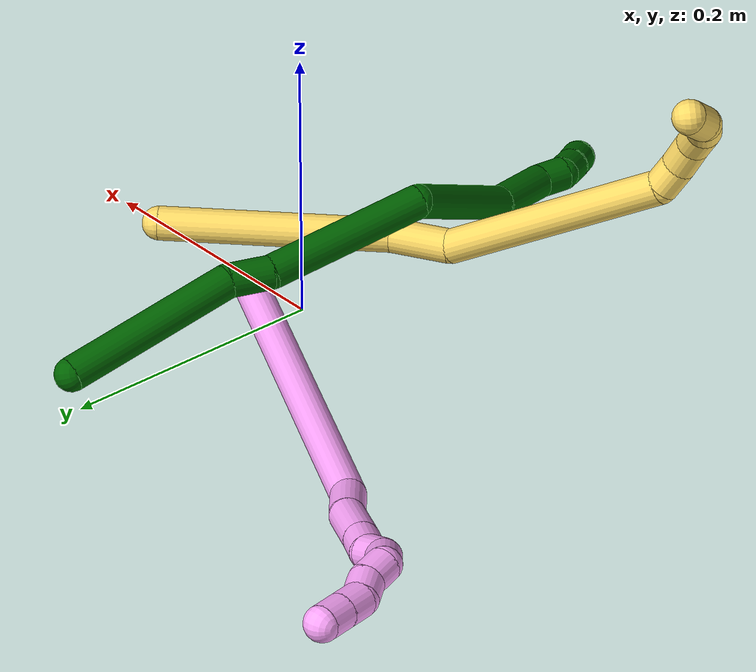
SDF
<sdf version="1.7">
 <world name="default">
  <model name="photoneo_s_sensor">
   <static>1</static>
   <pose>0 0 2 1.57079 1.57079 3.14159</pose>
   <link name="link">
    <inertial><mass>0.1</mass></inertial>
    <sensor name="sensor" type="depth">
     <update_rate>30</update_rate>
     <camera>
      <horizontal_fov>1.22</horizontal_fov>
      <image><width>1920</width><height>1200</height><format>B8G8R8</format></image>
      <clip><near>0.1</near><far>4</far></clip>
      <depth_camera><output>points</output></depth_camera>
     </camera>
     <plugin name="camera_plugin" filename="libgazebo_ros_depth_camera.so">
      <baseline>0.2</baseline>
      <alwaysOn>1</alwaysOn>
      <updateRate>0.0</updateRate>
      <cameraName>camera_ir</cameraName>
      <imageTopicName>/camera/color/image_raw</imageTopicName>
      <cameraInfoTopicName>/camera/color/camera_info</cameraInfoTopicName>
      <depthImageTopicName>/camera/depth/image_raw</depthImageTopicName>
      <depthImageCameraInfoTopicName>/camera/depth/camera_info</depthImageCameraInfoTopicName>
      <pointCloudTopicName>/camera/depth/points</pointCloudTopicName>
      <frameName>fr_optical</frameName>
      <pointCloudCutoff>0.1</pointCloudCutoff>
      <pointCloudCutoffMax>2.0</pointCloudCutoffMax>
      <distortionK1>0</distortionK1>
      <distortionK2>0</distortionK2>
      <distortionK3>0</distortionK3>
      <distortionT1>0</distortionT1>
      <distortionT2>0</distortionT2>
      <CxPrime>0</CxPrime>
      <Cx>0</Cx>
      <Cy>0</Cy>
      <focalLength>0</focalLength>
      <hackBaseline>0</hackBaseline>
     </plugin>
    </sensor>
   </link>
  </model>
  <model name="bin">
   <static>1</static>
   <link name="bottom">
    <collision name="collision-bottom">
     <pose>0 0 -0.01 0 -0 0</pose>
     <geometry><box><size>0.8 0.6 0.02</size></box></geometry>
     <surface>
      <friction><ode><mu>100</mu><mu2>100</mu2></ode></friction>
      <contact><collide_bitmask>65535</collide_bitmask></contact>
     </surface>
    </collision>
   </link>
   <link name="west_wall">
    <collision name="collision-west_wall">
     <pose>-0.41 0 0.1 0 -0 0</pose>
     <geometry><box><size>0.02 0.6 0.2</size></box></geometry>
     <surface>
      <friction><ode><mu>100</mu><mu2>100</mu2></ode></friction>
      <contact><collide_bitmask>65535</collide_bitmask></contact>
     </surface>
    </collision>
   </link>
   <link name="east_wall">
    <collision name="collision-east_wall">
     <pose>0.41 0 0.1 0 -0 0</pose>
     <geometry><box><size>0.02 0.6 0.2</size></box></geometry>
     <surface>
      <friction><ode><mu>100</mu><mu2>100</mu2></ode></friction>
      <contact><collide_bitmask>65535</collide_bitmask></contact>
     </surface>
    </collision>
   </link>
   <link name="south_wall">
    <collision name="collision-south_wall">
     <pose>0 -0.31 0.1 0 -0 0</pose>
     <geometry><box><size>0.8 0.02 0.2</size></box></geometry>
     <surface>
      <friction><ode><mu>100</mu><mu2>100</mu2></ode></friction>
      <contact><collide_bitmask>65535</collide_bitmask></contact>
     </surface>
    </collision>
   </link>
   <link name="north_wall">
    <collision name="collision-north_wall">
     <pose>0 0.31 0.1 0 -0 0</pose>
     <geometry><box><size>0.8 0.02 0.2</size></box></geometry>
     <surface>
      <friction><ode><mu>100</mu><mu2>100</mu2></ode></friction>
      <contact><collide_bitmask>65535</collide_bitmask></contact>
     </surface>
    </collision>
   </link>
  </model>
  <model name="4">
   <static>0</static>
   <link name="4">
    <collision name="collision-cylinder-e_1_1_4">
     <pose>-0.062765 0.024724 0.118933 -0.204961 -0.476908 0.049986</pose>
     <geometry><cylinder><radius>0.0125</radius><length>0.273465</length></cylinder></geometry>
     <surface>
      <friction><ode><mu>1.16</mu><mu2>1.16</mu2><slip1>0</slip1><slip2>0</slip2></ode></friction>
      <contact><ode><kp>1e+06</kp><kd>1</kd><max_vel>0</max_vel><min_depth>0.001</min_depth></ode></contact>
     </surface>
    </collision>
    <visual name="visual-cylinder-e_1_1_4">
     <pose>-0.062765 0.024724 0.118933 -0.204961 -0.476908 0.049986</pose>
     <geometry><cylinder><radius>0.0125</radius><length>0.273465</length></cylinder></geometry>
     <material><ambient>1 0.65098 0.996078 1</ambient></material>
    </visual>
    <collision name="collision-cylinder-e_2_4_5">
     <pose>-0.135079 0.058326 0.250981 -0.595091 -0.542561 0.170169</pose>
     <geometry><cylinder><radius>0.0125</radius><length>0.036987</length></cylinder></geometry>
     <surface>
      <friction><ode><mu>1.16</mu><mu2>1.16</mu2><slip1>0</slip1><slip2>0</slip2></ode></friction>
      <contact><ode><kp>1e+06</kp><kd>1</kd><max_vel>0</max_vel><min_depth>0.001</min_depth></ode></contact>
     </surface>
    </collision>
    <visual name="visual-cylinder-e_2_4_5">
     <pose>-0.135079 0.058326 0.250981 -0.595091 -0.542561 0.170169</pose>
     <geometry><cylinder><radius>0.0125</radius><length>0.036987</length></cylinder></geometry>
     <material><ambient>1 0.65098 0.996078 1</ambient></material>
    </visual>
    <collision name="collision-cylinder-e_3_5_6">
     <pose>-0.152834 0.075693 0.283196 -0.4182 -0.374143 0.08029</pose>
     <geometry><cylinder><radius>0.0125</radius><length>0.044908</length></cylinder></geometry>
     <surface>
      <friction><ode><mu>1.16</mu><mu2>1.16</mu2><slip1>0</slip1><slip2>0</slip2></ode></friction>
      <contact><ode><kp>1e+06</kp><kd>1</kd><max_vel>0</max_vel><min_depth>0.001</min_depth></ode></contact>
     </surface>
    </collision>
    <visual name="visual-cylinder-e_3_5_6">
     <pose>-0.152834 0.075693 0.283196 -0.4182 -0.374143 0.08029</pose>
     <geometry><cylinder><radius>0.0125</radius><length>0.044908</length></cylinder></geometry>
     <material><ambient>1 0.65098 0.996078 1</ambient></material>
    </visual>
    <collision name="collision-cylinder-e_4_6_7">
     <pose>-0.165764 0.08903 0.312281 -0.452081 -0.402326 0.093723</pose>
     <geometry><cylinder><radius>0.0125</radius><length>0.024129</length></cylinder></geometry>
     <surface>
      <friction><ode><mu>1.16</mu><mu2>1.16</mu2><slip1>0</slip1><slip2>0</slip2></ode></friction>
      <contact><ode><kp>1e+06</kp><kd>1</kd><max_vel>0</max_vel><min_depth>0.001</min_depth></ode></contact>
     </surface>
    </collision>
    <visual name="visual-cylinder-e_4_6_7">
     <pose>-0.165764 0.08903 0.312281 -0.452081 -0.402326 0.093723</pose>
     <geometry><cylinder><radius>0.0125</radius><length>0.024129</length></cylinder></geometry>
     <material><ambient>1 0.65098 0.996078 1</ambient></material>
    </visual>
    <collision name="collision-cylinder-e_5_7_8">
     <pose>-0.170702 0.097393 0.331821 -0.352388 -0.020998 0.003739</pose>
     <geometry><cylinder><radius>0.0125</radius><length>0.020363</length></cylinder></geometry>
     <surface>
      <friction><ode><mu>1.16</mu><mu2>1.16</mu2><slip1>0</slip1><slip2>0</slip2></ode></friction>
      <contact><ode><kp>1e+06</kp><kd>1</kd><max_vel>0</max_vel><min_depth>0.001</min_depth></ode></contact>
     </surface>
    </collision>
    <visual name="visual-cylinder-e_5_7_8">
     <pose>-0.170702 0.097393 0.331821 -0.352388 -0.020998 0.003739</pose>
     <geometry><cylinder><radius>0.0125</radius><length>0.020363</length></cylinder></geometry>
     <material><ambient>1 0.65098 0.996078 1</ambient></material>
    </visual>
    <collision name="collision-cylinder-e_6_8_9">
     <pose>-0.175196 0.106565 0.348447 -0.674822 -0.441435 0.157108</pose>
     <geometry><cylinder><radius>0.0125</radius><length>0.020036</length></cylinder></geometry>
     <surface>
      <friction><ode><mu>1.16</mu><mu2>1.16</mu2><slip1>0</slip1><slip2>0</slip2></ode></friction>
      <contact><ode><kp>1e+06</kp><kd>1</kd><max_vel>0</max_vel><min_depth>0.001</min_depth></ode></contact>
     </surface>
    </collision>
    <visual name="visual-cylinder-e_6_8_9">
     <pose>-0.175196 0.106565 0.348447 -0.674822 -0.441435 0.157108</pose>
     <geometry><cylinder><radius>0.0125</radius><length>0.020036</length></cylinder></geometry>
     <material><ambient>1 0.65098 0.996078 1</ambient></material>
    </visual>
    <collision name="collision-cylinder-e_7_9_10">
     <pose>-0.188326 0.116451 0.357699 -1.09469 -1.0777 0.698846</pose>
     <geometry><cylinder><radius>0.0125</radius><length>0.020094</length></cylinder></geometry>
     <surface>
      <friction><ode><mu>1.16</mu><mu2>1.16</mu2><slip1>0</slip1><slip2>0</slip2></ode></friction>
      <contact><ode><kp>1e+06</kp><kd>1</kd><max_vel>0</max_vel><min_depth>0.001</min_depth></ode></contact>
     </surface>
    </collision>
    <visual name="visual-cylinder-e_7_9_10">
     <pose>-0.188326 0.116451 0.357699 -1.09469 -1.0777 0.698846</pose>
     <geometry><cylinder><radius>0.0125</radius><length>0.020094</length></cylinder></geometry>
     <material><ambient>1 0.65098 0.996078 1</ambient></material>
    </visual>
    <collision name="collision-cylinder-e_8_10_11">
     <pose>-0.204707 0.124066 0.365527 -0.540375 -0.852185 0.250112</pose>
     <geometry><cylinder><radius>0.0125</radius><length>0.02001</length></cylinder></geometry>
     <surface>
      <friction><ode><mu>1.16</mu><mu2>1.16</mu2><slip1>0</slip1><slip2>0</slip2></ode></friction>
      <contact><ode><kp>1e+06</kp><kd>1</kd><max_vel>0</max_vel><min_depth>0.001</min_depth></ode></contact>
     </surface>
    </collision>
    <visual name="visual-cylinder-e_8_10_11">
     <pose>-0.204707 0.124066 0.365527 -0.540375 -0.852185 0.250112</pose>
     <geometry><cylinder><radius>0.0125</radius><length>0.02001</length></cylinder></geometry>
     <material><ambient>1 0.65098 0.996078 1</ambient></material>
    </visual>
    <collision name="collision-cylinder-e_9_11_12">
     <pose>-0.220461 0.132909 0.372819 -1.27809 -0.964922 0.742277</pose>
     <geometry><cylinder><radius>0.0125</radius><length>0.020006</length></cylinder></geometry>
     <surface>
      <friction><ode><mu>1.16</mu><mu2>1.16</mu2><slip1>0</slip1><slip2>0</slip2></ode></friction>
      <contact><ode><kp>1e+06</kp><kd>1</kd><max_vel>0</max_vel><min_depth>0.001</min_depth></ode></contact>
     </surface>
    </collision>
    <visual name="visual-cylinder-e_9_11_12">
     <pose>-0.220461 0.132909 0.372819 -1.27809 -0.964922 0.742277</pose>
     <geometry><cylinder><radius>0.0125</radius><length>0.020006</length></cylinder></geometry>
     <material><ambient>1 0.65098 0.996078 1</ambient></material>
    </visual>
    <collision name="collision-cylinder-e_10_12_2">
     <pose>-0.23684 0.143884 0.376195 -1.26681 -0.953833 0.7253</pose>
     <geometry><cylinder><radius>0.0125</radius><length>0.020002</length></cylinder></geometry>
     <surface>
      <friction><ode><mu>1.16</mu><mu2>1.16</mu2><slip1>0</slip1><slip2>0</slip2></ode></friction>
      <contact><ode><kp>1e+06</kp><kd>1</kd><max_vel>0</max_vel><min_depth>0.001</min_depth></ode></contact>
     </surface>
    </collision>
    <visual name="visual-cylinder-e_10_12_2">
     <pose>-0.23684 0.143884 0.376195 -1.26681 -0.953833 0.7253</pose>
     <geometry><cylinder><radius>0.0125</radius><length>0.020002</length></cylinder></geometry>
     <material><ambient>1 0.65098 0.996078 1</ambient></material>
    </visual>
    <collision name="collision-sphere-2">
     <pose>-0.244997 0.149405 0.377927 0 -0 0</pose>
     <geometry><sphere><radius>0.0125</radius></sphere></geometry>
     <surface>
      <friction><ode><mu>1.16</mu><mu2>1.16</mu2><slip1>0</slip1><slip2>0</slip2></ode></friction>
      <contact><ode><kp>1e+06</kp><kd>1</kd><max_vel>0</max_vel><min_depth>0.001</min_depth></ode></contact>
     </surface>
    </collision>
    <visual name="visual-sphere-2">
     <pose>-0.244997 0.149405 0.377927 0 -0 0</pose>
     <geometry><sphere><radius>0.0125</radius></sphere></geometry>
     <material><ambient>1 0.65098 0.996078 1</ambient></material>
    </visual>
    <collision name="collision-sphere-12">
     <pose>-0.228683 0.138363 0.374463 0 -0 0</pose>
     <geometry><sphere><radius>0.0125</radius></sphere></geometry>
     <surface>
      <friction><ode><mu>1.16</mu><mu2>1.16</mu2><slip1>0</slip1><slip2>0</slip2></ode></friction>
      <contact><ode><kp>1e+06</kp><kd>1</kd><max_vel>0</max_vel><min_depth>0.001</min_depth></ode></contact>
     </surface>
    </collision>
    <visual name="visual-sphere-12">
     <pose>-0.228683 0.138363 0.374463 0 -0 0</pose>
     <geometry><sphere><radius>0.0125</radius></sphere></geometry>
     <material><ambient>1 0.65098 0.996078 1</ambient></material>
    </visual>
    <collision name="collision-sphere-11">
     <pose>-0.212238 0.127455 0.371176 0 -0 0</pose>
     <geometry><sphere><radius>0.0125</radius></sphere></geometry>
     <surface>
      <friction><ode><mu>1.16</mu><mu2>1.16</mu2><slip1>0</slip1><slip2>0</slip2></ode></friction>
      <contact><ode><kp>1e+06</kp><kd>1</kd><max_vel>0</max_vel><min_depth>0.001</min_depth></ode></contact>
     </surface>
    </collision>
    <visual name="visual-sphere-11">
     <pose>-0.212238 0.127455 0.371176 0 -0 0</pose>
     <geometry><sphere><radius>0.0125</radius></sphere></geometry>
     <material><ambient>1 0.65098 0.996078 1</ambient></material>
    </visual>
    <collision name="collision-sphere-10">
     <pose>-0.197176 0.120678 0.359879 0 -0 0</pose>
     <geometry><sphere><radius>0.0125</radius></sphere></geometry>
     <surface>
      <friction><ode><mu>1.16</mu><mu2>1.16</mu2><slip1>0</slip1><slip2>0</slip2></ode></friction>
      <contact><ode><kp>1e+06</kp><kd>1</kd><max_vel>0</max_vel><min_depth>0.001</min_depth></ode></contact>
     </surface>
    </collision>
    <visual name="visual-sphere-10">
     <pose>-0.197176 0.120678 0.359879 0 -0 0</pose>
     <geometry><sphere><radius>0.0125</radius></sphere></geometry>
     <material><ambient>1 0.65098 0.996078 1</ambient></material>
    </visual>
    <collision name="collision-sphere-9">
     <pose>-0.179476 0.112224 0.35552 0 -0 0</pose>
     <geometry><sphere><radius>0.0125</radius></sphere></geometry>
     <surface>
      <friction><ode><mu>1.16</mu><mu2>1.16</mu2><slip1>0</slip1><slip2>0</slip2></ode></friction>
      <contact><ode><kp>1e+06</kp><kd>1</kd><max_vel>0</max_vel><min_depth>0.001</min_depth></ode></contact>
     </surface>
    </collision>
    <visual name="visual-sphere-9">
     <pose>-0.179476 0.112224 0.35552 0 -0 0</pose>
     <geometry><sphere><radius>0.0125</radius></sphere></geometry>
     <material><ambient>1 0.65098 0.996078 1</ambient></material>
    </visual>
    <collision name="collision-sphere-4">
     <pose>-0.12553 0.049448 0.237866 0 -0 0</pose>
     <geometry><sphere><radius>0.0125</radius></sphere></geometry>
     <surface>
      <friction><ode><mu>1.16</mu><mu2>1.16</mu2><slip1>0</slip1><slip2>0</slip2></ode></friction>
      <contact><ode><kp>1e+06</kp><kd>1</kd><max_vel>0</max_vel><min_depth>0.001</min_depth></ode></contact>
     </surface>
    </collision>
    <visual name="visual-sphere-4">
     <pose>-0.12553 0.049448 0.237866 0 -0 0</pose>
     <geometry><sphere><radius>0.0125</radius></sphere></geometry>
     <material><ambient>1 0.65098 0.996078 1</ambient></material>
    </visual>
    <collision name="collision-sphere-1">
     <geometry><sphere><radius>0.0125</radius></sphere></geometry>
     <surface>
      <friction><ode><mu>1.16</mu><mu2>1.16</mu2><slip1>0</slip1><slip2>0</slip2></ode></friction>
      <contact><ode><kp>1e+06</kp><kd>1</kd><max_vel>0</max_vel><min_depth>0.001</min_depth></ode></contact>
     </surface>
    </collision>
    <visual name="visual-sphere-1">
     <geometry><sphere><radius>0.0125</radius></sphere></geometry>
     <material><ambient>1 0.65098 0.996078 1</ambient></material>
    </visual>
    <collision name="collision-sphere-8">
     <pose>-0.170916 0.100906 0.341375 0 -0 0</pose>
     <geometry><sphere><radius>0.0125</radius></sphere></geometry>
     <surface>
      <friction><ode><mu>1.16</mu><mu2>1.16</mu2><slip1>0</slip1><slip2>0</slip2></ode></friction>
      <contact><ode><kp>1e+06</kp><kd>1</kd><max_vel>0</max_vel><min_depth>0.001</min_depth></ode></contact>
     </surface>
    </collision>
    <visual name="visual-sphere-8">
     <pose>-0.170916 0.100906 0.341375 0 -0 0</pose>
     <geometry><sphere><radius>0.0125</radius></sphere></geometry>
     <material><ambient>1 0.65098 0.996078 1</ambient></material>
    </visual>
    <collision name="collision-sphere-5">
     <pose>-0.144627 0.067204 0.264097 0 -0 0</pose>
     <geometry><sphere><radius>0.0125</radius></sphere></geometry>
     <surface>
      <friction><ode><mu>1.16</mu><mu2>1.16</mu2><slip1>0</slip1><slip2>0</slip2></ode></friction>
      <contact><ode><kp>1e+06</kp><kd>1</kd><max_vel>0</max_vel><min_depth>0.001</min_depth></ode></contact>
     </surface>
    </collision>
    <visual name="visual-sphere-5">
     <pose>-0.144627 0.067204 0.264097 0 -0 0</pose>
     <geometry><sphere><radius>0.0125</radius></sphere></geometry>
     <material><ambient>1 0.65098 0.996078 1</ambient></material>
    </visual>
    <collision name="collision-sphere-6">
     <pose>-0.16104 0.084181 0.302295 0 -0 0</pose>
     <geometry><sphere><radius>0.0125</radius></sphere></geometry>
     <surface>
      <friction><ode><mu>1.16</mu><mu2>1.16</mu2><slip1>0</slip1><slip2>0</slip2></ode></friction>
      <contact><ode><kp>1e+06</kp><kd>1</kd><max_vel>0</max_vel><min_depth>0.001</min_depth></ode></contact>
     </surface>
    </collision>
    <visual name="visual-sphere-6">
     <pose>-0.16104 0.084181 0.302295 0 -0 0</pose>
     <geometry><sphere><radius>0.0125</radius></sphere></geometry>
     <material><ambient>1 0.65098 0.996078 1</ambient></material>
    </visual>
    <collision name="collision-sphere-7">
     <pose>-0.170488 0.093879 0.322267 0 -0 0</pose>
     <geometry><sphere><radius>0.0125</radius></sphere></geometry>
     <surface>
      <friction><ode><mu>1.16</mu><mu2>1.16</mu2><slip1>0</slip1><slip2>0</slip2></ode></friction>
      <contact><ode><kp>1e+06</kp><kd>1</kd><max_vel>0</max_vel><min_depth>0.001</min_depth></ode></contact>
     </surface>
    </collision>
    <visual name="visual-sphere-7">
     <pose>-0.170488 0.093879 0.322267 0 -0 0</pose>
     <geometry><sphere><radius>0.0125</radius></sphere></geometry>
     <material><ambient>1 0.65098 0.996078 1</ambient></material>
    </visual>
    <inertial>
     <pose>-0.114076 0.057887 0.210567 0 -0 0</pose>
     <mass>0.5</mass>
     <inertia>
      <ixx>0.001603</ixx>
      <ixy>0</ixy>
      <ixz>0</ixz>
      <iyy>0.001799</iyy>
      <iyz>0</iyz>
      <izz>0.000508</izz>
     </inertia>
    </inertial>
   </link>
   <pose>0.030246 0.020431 0.010705 1.4759 -0.519346 -1.47204</pose>
  </model>
  <model name="5">
   <static>0</static>
   <link name="5">
    <collision name="collision-cylinder-e_1_1_4">
     <pose>0.011979 -0.010937 0.082631 0.131589 0.142738 0.009421</pose>
     <geometry><cylinder><radius>0.0125</radius><length>0.168416</length></cylinder></geometry>
     <surface>
      <friction><ode><mu>1.16</mu><mu2>1.16</mu2><slip1>0</slip1><slip2>0</slip2></ode></friction>
      <contact><ode><kp>1e+06</kp><kd>1</kd><max_vel>0</max_vel><min_depth>0.001</min_depth></ode></contact>
     </surface>
    </collision>
    <visual name="visual-cylinder-e_1_1_4">
     <pose>0.011979 -0.010937 0.082631 0.131589 0.142738 0.009421</pose>
     <geometry><cylinder><radius>0.0125</radius><length>0.168416</length></cylinder></geometry>
     <material><ambient>1 0.858824 0.4 1</ambient></material>
    </visual>
    <collision name="collision-cylinder-e_2_4_5">
     <pose>0.029288 -0.028915 0.185732 0.331342 0.241408 0.040556</pose>
     <geometry><cylinder><radius>0.0125</radius><length>0.044588</length></cylinder></geometry>
     <surface>
      <friction><ode><mu>1.16</mu><mu2>1.16</mu2><slip1>0</slip1><slip2>0</slip2></ode></friction>
      <contact><ode><kp>1e+06</kp><kd>1</kd><max_vel>0</max_vel><min_depth>0.001</min_depth></ode></contact>
     </surface>
    </collision>
    <visual name="visual-cylinder-e_2_4_5">
     <pose>0.029288 -0.028915 0.185732 0.331342 0.241408 0.040556</pose>
     <geometry><cylinder><radius>0.0125</radius><length>0.044588</length></cylinder></geometry>
     <material><ambient>1 0.858824 0.4 1</ambient></material>
    </visual>
    <collision name="collision-cylinder-e_3_5_6">
     <pose>0.015804 -0.081625 0.280786 0.54942 -0.211889 -0.059924</pose>
     <geometry><cylinder><radius>0.0125</radius><length>0.17891</length></cylinder></geometry>
     <surface>
      <friction><ode><mu>1.16</mu><mu2>1.16</mu2><slip1>0</slip1><slip2>0</slip2></ode></friction>
      <contact><ode><kp>1e+06</kp><kd>1</kd><max_vel>0</max_vel><min_depth>0.001</min_depth></ode></contact>
     </surface>
    </collision>
    <visual name="visual-cylinder-e_3_5_6">
     <pose>0.015804 -0.081625 0.280786 0.54942 -0.211889 -0.059924</pose>
     <geometry><cylinder><radius>0.0125</radius><length>0.17891</length></cylinder></geometry>
     <material><ambient>1 0.858824 0.4 1</ambient></material>
    </visual>
    <collision name="collision-cylinder-e_4_6_7">
     <pose>-0.010148 -0.13107 0.361998 0.517888 -0.752279 -0.208476</pose>
     <geometry><cylinder><radius>0.0125</radius><length>0.020898</length></cylinder></geometry>
     <surface>
      <friction><ode><mu>1.16</mu><mu2>1.16</mu2><slip1>0</slip1><slip2>0</slip2></ode></friction>
      <contact><ode><kp>1e+06</kp><kd>1</kd><max_vel>0</max_vel><min_depth>0.001</min_depth></ode></contact>
     </surface>
    </collision>
    <visual name="visual-cylinder-e_4_6_7">
     <pose>-0.010148 -0.13107 0.361998 0.517888 -0.752279 -0.208476</pose>
     <geometry><cylinder><radius>0.0125</radius><length>0.020898</length></cylinder></geometry>
     <material><ambient>1 0.858824 0.4 1</ambient></material>
    </visual>
    <collision name="collision-cylinder-e_5_7_8">
     <pose>-0.024839 -0.142024 0.374169 0.913236 -0.694361 -0.351825</pose>
     <geometry><cylinder><radius>0.0125</radius><length>0.0236</length></cylinder></geometry>
     <surface>
      <friction><ode><mu>1.16</mu><mu2>1.16</mu2><slip1>0</slip1><slip2>0</slip2></ode></friction>
      <contact><ode><kp>1e+06</kp><kd>1</kd><max_vel>0</max_vel><min_depth>0.001</min_depth></ode></contact>
     </surface>
    </collision>
    <visual name="visual-cylinder-e_5_7_8">
     <pose>-0.024839 -0.142024 0.374169 0.913236 -0.694361 -0.351825</pose>
     <geometry><cylinder><radius>0.0125</radius><length>0.0236</length></cylinder></geometry>
     <material><ambient>1 0.858824 0.4 1</ambient></material>
    </visual>
    <collision name="collision-cylinder-e_6_8_9">
     <pose>-0.037672 -0.158881 0.383377 1.20873 -0.471895 -0.329056</pose>
     <geometry><cylinder><radius>0.0125</radius><length>0.023241</length></cylinder></geometry>
     <surface>
      <friction><ode><mu>1.16</mu><mu2>1.16</mu2><slip1>0</slip1><slip2>0</slip2></ode></friction>
      <contact><ode><kp>1e+06</kp><kd>1</kd><max_vel>0</max_vel><min_depth>0.001</min_depth></ode></contact>
     </surface>
    </collision>
    <visual name="visual-cylinder-e_6_8_9">
     <pose>-0.037672 -0.158881 0.383377 1.20873 -0.471895 -0.329056</pose>
     <geometry><cylinder><radius>0.0125</radius><length>0.023241</length></cylinder></geometry>
     <material><ambient>1 0.858824 0.4 1</ambient></material>
    </visual>
    <collision name="collision-cylinder-e_7_9_10">
     <pose>-0.046423 -0.178021 0.386854 1.59084 -0.35136 -0.358325</pose>
     <geometry><cylinder><radius>0.0125</radius><length>0.020157</length></cylinder></geometry>
     <surface>
      <friction><ode><mu>1.16</mu><mu2>1.16</mu2><slip1>0</slip1><slip2>0</slip2></ode></friction>
      <contact><ode><kp>1e+06</kp><kd>1</kd><max_vel>0</max_vel><min_depth>0.001</min_depth></ode></contact>
     </surface>
    </collision>
    <visual name="visual-cylinder-e_7_9_10">
     <pose>-0.046423 -0.178021 0.386854 1.59084 -0.35136 -0.358325</pose>
     <geometry><cylinder><radius>0.0125</radius><length>0.020157</length></cylinder></geometry>
     <material><ambient>1 0.858824 0.4 1</ambient></material>
    </visual>
    <collision name="collision-cylinder-e_8_10_2">
     <pose>-0.053572 -0.195491 0.381742 2.12183 -0.373091 -0.651019</pose>
     <geometry><cylinder><radius>0.0125</radius><length>0.02019</length></cylinder></geometry>
     <surface>
      <friction><ode><mu>1.16</mu><mu2>1.16</mu2><slip1>0</slip1><slip2>0</slip2></ode></friction>
      <contact><ode><kp>1e+06</kp><kd>1</kd><max_vel>0</max_vel><min_depth>0.001</min_depth></ode></contact>
     </surface>
    </collision>
    <visual name="visual-cylinder-e_8_10_2">
     <pose>-0.053572 -0.195491 0.381742 2.12183 -0.373091 -0.651019</pose>
     <geometry><cylinder><radius>0.0125</radius><length>0.02019</length></cylinder></geometry>
     <material><ambient>1 0.858824 0.4 1</ambient></material>
    </visual>
    <collision name="collision-sphere-2">
     <pose>-0.057251 -0.2035 0.376821 0 -0 0</pose>
     <geometry><sphere><radius>0.0125</radius></sphere></geometry>
     <surface>
      <friction><ode><mu>1.16</mu><mu2>1.16</mu2><slip1>0</slip1><slip2>0</slip2></ode></friction>
      <contact><ode><kp>1e+06</kp><kd>1</kd><max_vel>0</max_vel><min_depth>0.001</min_depth></ode></contact>
     </surface>
    </collision>
    <visual name="visual-sphere-2">
     <pose>-0.057251 -0.2035 0.376821 0 -0 0</pose>
     <geometry><sphere><radius>0.0125</radius></sphere></geometry>
     <material><ambient>1 0.858824 0.4 1</ambient></material>
    </visual>
    <collision name="collision-sphere-10">
     <pose>-0.049892 -0.187482 0.386664 0 -0 0</pose>
     <geometry><sphere><radius>0.0125</radius></sphere></geometry>
     <surface>
      <friction><ode><mu>1.16</mu><mu2>1.16</mu2><slip1>0</slip1><slip2>0</slip2></ode></friction>
      <contact><ode><kp>1e+06</kp><kd>1</kd><max_vel>0</max_vel><min_depth>0.001</min_depth></ode></contact>
     </surface>
    </collision>
    <visual name="visual-sphere-10">
     <pose>-0.049892 -0.187482 0.386664 0 -0 0</pose>
     <geometry><sphere><radius>0.0125</radius></sphere></geometry>
     <material><ambient>1 0.858824 0.4 1</ambient></material>
    </visual>
    <collision name="collision-sphere-9">
     <pose>-0.042955 -0.16856 0.387043 0 -0 0</pose>
     <geometry><sphere><radius>0.0125</radius></sphere></geometry>
     <surface>
      <friction><ode><mu>1.16</mu><mu2>1.16</mu2><slip1>0</slip1><slip2>0</slip2></ode></friction>
      <contact><ode><kp>1e+06</kp><kd>1</kd><max_vel>0</max_vel><min_depth>0.001</min_depth></ode></contact>
     </surface>
    </collision>
    <visual name="visual-sphere-9">
     <pose>-0.042955 -0.16856 0.387043 0 -0 0</pose>
     <geometry><sphere><radius>0.0125</radius></sphere></geometry>
     <material><ambient>1 0.858824 0.4 1</ambient></material>
    </visual>
    <collision name="collision-sphere-4">
     <pose>0.023958 -0.021873 0.165262 0 -0 0</pose>
     <geometry><sphere><radius>0.0125</radius></sphere></geometry>
     <surface>
      <friction><ode><mu>1.16</mu><mu2>1.16</mu2><slip1>0</slip1><slip2>0</slip2></ode></friction>
      <contact><ode><kp>1e+06</kp><kd>1</kd><max_vel>0</max_vel><min_depth>0.001</min_depth></ode></contact>
     </surface>
    </collision>
    <visual name="visual-sphere-4">
     <pose>0.023958 -0.021873 0.165262 0 -0 0</pose>
     <geometry><sphere><radius>0.0125</radius></sphere></geometry>
     <material><ambient>1 0.858824 0.4 1</ambient></material>
    </visual>
    <collision name="collision-sphere-1">
     <geometry><sphere><radius>0.0125</radius></sphere></geometry>
     <surface>
      <friction><ode><mu>1.16</mu><mu2>1.16</mu2><slip1>0</slip1><slip2>0</slip2></ode></friction>
      <contact><ode><kp>1e+06</kp><kd>1</kd><max_vel>0</max_vel><min_depth>0.001</min_depth></ode></contact>
     </surface>
    </collision>
    <visual name="visual-sphere-1">
     <geometry><sphere><radius>0.0125</radius></sphere></geometry>
     <material><ambient>1 0.858824 0.4 1</ambient></material>
    </visual>
    <collision name="collision-sphere-8">
     <pose>-0.03239 -0.149201 0.379711 0 -0 0</pose>
     <geometry><sphere><radius>0.0125</radius></sphere></geometry>
     <surface>
      <friction><ode><mu>1.16</mu><mu2>1.16</mu2><slip1>0</slip1><slip2>0</slip2></ode></friction>
      <contact><ode><kp>1e+06</kp><kd>1</kd><max_vel>0</max_vel><min_depth>0.001</min_depth></ode></contact>
     </surface>
    </collision>
    <visual name="visual-sphere-8">
     <pose>-0.03239 -0.149201 0.379711 0 -0 0</pose>
     <geometry><sphere><radius>0.0125</radius></sphere></geometry>
     <material><ambient>1 0.858824 0.4 1</ambient></material>
    </visual>
    <collision name="collision-sphere-5">
     <pose>0.034617 -0.035957 0.206202 0 -0 0</pose>
     <geometry><sphere><radius>0.0125</radius></sphere></geometry>
     <surface>
      <friction><ode><mu>1.16</mu><mu2>1.16</mu2><slip1>0</slip1><slip2>0</slip2></ode></friction>
      <contact><ode><kp>1e+06</kp><kd>1</kd><max_vel>0</max_vel><min_depth>0.001</min_depth></ode></contact>
     </surface>
    </collision>
    <visual name="visual-sphere-5">
     <pose>0.034617 -0.035957 0.206202 0 -0 0</pose>
     <geometry><sphere><radius>0.0125</radius></sphere></geometry>
     <material><ambient>1 0.858824 0.4 1</ambient></material>
    </visual>
    <collision name="collision-sphere-6">
     <pose>-0.003009 -0.127293 0.355369 0 -0 0</pose>
     <geometry><sphere><radius>0.0125</radius></sphere></geometry>
     <surface>
      <friction><ode><mu>1.16</mu><mu2>1.16</mu2><slip1>0</slip1><slip2>0</slip2></ode></friction>
      <contact><ode><kp>1e+06</kp><kd>1</kd><max_vel>0</max_vel><min_depth>0.001</min_depth></ode></contact>
     </surface>
    </collision>
    <visual name="visual-sphere-6">
     <pose>-0.003009 -0.127293 0.355369 0 -0 0</pose>
     <geometry><sphere><radius>0.0125</radius></sphere></geometry>
     <material><ambient>1 0.858824 0.4 1</ambient></material>
    </visual>
    <collision name="collision-sphere-7">
     <pose>-0.017288 -0.134847 0.368627 0 -0 0</pose>
     <geometry><sphere><radius>0.0125</radius></sphere></geometry>
     <surface>
      <friction><ode><mu>1.16</mu><mu2>1.16</mu2><slip1>0</slip1><slip2>0</slip2></ode></friction>
      <contact><ode><kp>1e+06</kp><kd>1</kd><max_vel>0</max_vel><min_depth>0.001</min_depth></ode></contact>
     </surface>
    </collision>
    <visual name="visual-sphere-7">
     <pose>-0.017288 -0.134847 0.368627 0 -0 0</pose>
     <geometry><sphere><radius>0.0125</radius></sphere></geometry>
     <material><ambient>1 0.858824 0.4 1</ambient></material>
    </visual>
    <inertial>
     <pose>0.004919 -0.070107 0.226488 0 -0 0</pose>
     <mass>0.5</mass>
     <inertia>
      <ixx>0.000857</ixx>
      <ixy>0</ixy>
      <ixz>0</ixz>
      <iyy>0.000786</iyy>
      <iyz>0</iyz>
      <izz>0.000384</izz>
     </inertia>
    </inertial>
   </link>
   <pose>0.114354 0.037325 0.035081 -1.32533 1.14807 2.69213</pose>
  </model>
  <model name="6">
   <static>0</static>
   <link name="6">
    <collision name="collision-cylinder-e_1_1_4">
     <pose>0.043344 -0.039054 0.030376 0.909736 0.719429 0.363792</pose>
     <geometry><cylinder><radius>0.0125</radius><length>0.131554</length></cylinder></geometry>
     <surface>
      <friction><ode><mu>1.16</mu><mu2>1.16</mu2><slip1>0</slip1><slip2>0</slip2></ode></friction>
      <contact><ode><kp>1e+06</kp><kd>1</kd><max_vel>0</max_vel><min_depth>0.001</min_depth></ode></contact>
     </surface>
    </collision>
    <visual name="visual-cylinder-e_1_1_4">
     <pose>0.043344 -0.039054 0.030376 0.909736 0.719429 0.363792</pose>
     <geometry><cylinder><radius>0.0125</radius><length>0.131554</length></cylinder></geometry>
     <material><ambient>0 0.392157 0.003922 1</ambient></material>
    </visual>
    <collision name="collision-cylinder-e_2_4_5">
     <pose>0.092778 -0.090122 0.069436 0.944969 0.389792 0.201102</pose>
     <geometry><cylinder><radius>0.0125</radius><length>0.032053</length></cylinder></geometry>
     <surface>
      <friction><ode><mu>1.16</mu><mu2>1.16</mu2><slip1>0</slip1><slip2>0</slip2></ode></friction>
      <contact><ode><kp>1e+06</kp><kd>1</kd><max_vel>0</max_vel><min_depth>0.001</min_depth></ode></contact>
     </surface>
    </collision>
    <visual name="visual-cylinder-e_2_4_5">
     <pose>0.092778 -0.090122 0.069436 0.944969 0.389792 0.201102</pose>
     <geometry><cylinder><radius>0.0125</radius><length>0.032053</length></cylinder></geometry>
     <material><ambient>0 0.392157 0.003922 1</ambient></material>
    </visual>
    <collision name="collision-cylinder-e_3_5_6">
     <pose>0.135729 -0.143347 0.105947 0.976866 0.637898 0.347409</pose>
     <geometry><cylinder><radius>0.0125</radius><length>0.123798</length></cylinder></geometry>
     <surface>
      <friction><ode><mu>1.16</mu><mu2>1.16</mu2><slip1>0</slip1><slip2>0</slip2></ode></friction>
      <contact><ode><kp>1e+06</kp><kd>1</kd><max_vel>0</max_vel><min_depth>0.001</min_depth></ode></contact>
     </surface>
    </collision>
    <visual name="visual-cylinder-e_3_5_6">
     <pose>0.135729 -0.143347 0.105947 0.976866 0.637898 0.347409</pose>
     <geometry><cylinder><radius>0.0125</radius><length>0.123798</length></cylinder></geometry>
     <material><ambient>0 0.392157 0.003922 1</ambient></material>
    </visual>
    <collision name="collision-cylinder-e_4_6_7">
     <pose>0.187474 -0.231337 0.131315 1.62336 0.307645 0.323973</pose>
     <geometry><cylinder><radius>0.0125</radius><length>0.098302</length></cylinder></geometry>
     <surface>
      <friction><ode><mu>1.16</mu><mu2>1.16</mu2><slip1>0</slip1><slip2>0</slip2></ode></friction>
      <contact><ode><kp>1e+06</kp><kd>1</kd><max_vel>0</max_vel><min_depth>0.001</min_depth></ode></contact>
     </surface>
    </collision>
    <visual name="visual-cylinder-e_4_6_7">
     <pose>0.187474 -0.231337 0.131315 1.62336 0.307645 0.323973</pose>
     <geometry><cylinder><radius>0.0125</radius><length>0.098302</length></cylinder></geometry>
     <material><ambient>0 0.392157 0.003922 1</ambient></material>
    </visual>
    <collision name="collision-cylinder-e_5_7_8">
     <pose>0.217791 -0.299669 0.12786 1.61687 0.6209 0.648222</pose>
     <geometry><cylinder><radius>0.0125</radius><length>0.053053</length></cylinder></geometry>
     <surface>
      <friction><ode><mu>1.16</mu><mu2>1.16</mu2><slip1>0</slip1><slip2>0</slip2></ode></friction>
      <contact><ode><kp>1e+06</kp><kd>1</kd><max_vel>0</max_vel><min_depth>0.001</min_depth></ode></contact>
     </surface>
    </collision>
    <visual name="visual-cylinder-e_5_7_8">
     <pose>0.217791 -0.299669 0.12786 1.61687 0.6209 0.648222</pose>
     <geometry><cylinder><radius>0.0125</radius><length>0.053053</length></cylinder></geometry>
     <material><ambient>0 0.392157 0.003922 1</ambient></material>
    </visual>
    <collision name="collision-cylinder-e_6_8_9">
     <pose>0.238584 -0.329385 0.130713 1.13043 0.536045 0.344903</pose>
     <geometry><cylinder><radius>0.0125</radius><length>0.020995</length></cylinder></geometry>
     <surface>
      <friction><ode><mu>1.16</mu><mu2>1.16</mu2><slip1>0</slip1><slip2>0</slip2></ode></friction>
      <contact><ode><kp>1e+06</kp><kd>1</kd><max_vel>0</max_vel><min_depth>0.001</min_depth></ode></contact>
     </surface>
    </collision>
    <visual name="visual-cylinder-e_6_8_9">
     <pose>0.238584 -0.329385 0.130713 1.13043 0.536045 0.344903</pose>
     <geometry><cylinder><radius>0.0125</radius><length>0.020995</length></cylinder></geometry>
     <material><ambient>0 0.392157 0.003922 1</ambient></material>
    </visual>
    <collision name="collision-cylinder-e_7_9_10">
     <pose>0.249984 -0.345133 0.132048 1.89067 0.647223 0.869574</pose>
     <geometry><cylinder><radius>0.0125</radius><length>0.020028</length></cylinder></geometry>
     <surface>
      <friction><ode><mu>1.16</mu><mu2>1.16</mu2><slip1>0</slip1><slip2>0</slip2></ode></friction>
      <contact><ode><kp>1e+06</kp><kd>1</kd><max_vel>0</max_vel><min_depth>0.001</min_depth></ode></contact>
     </surface>
    </collision>
    <visual name="visual-cylinder-e_7_9_10">
     <pose>0.249984 -0.345133 0.132048 1.89067 0.647223 0.869574</pose>
     <geometry><cylinder><radius>0.0125</radius><length>0.020028</length></cylinder></geometry>
     <material><ambient>0 0.392157 0.003922 1</ambient></material>
    </visual>
    <collision name="collision-cylinder-e_8_10_2">
     <pose>0.261918 -0.360143 0.126035 2.01132 0.622741 0.939309</pose>
     <geometry><cylinder><radius>0.0125</radius><length>0.020217</length></cylinder></geometry>
     <surface>
      <friction><ode><mu>1.16</mu><mu2>1.16</mu2><slip1>0</slip1><slip2>0</slip2></ode></friction>
      <contact><ode><kp>1e+06</kp><kd>1</kd><max_vel>0</max_vel><min_depth>0.001</min_depth></ode></contact>
     </surface>
    </collision>
    <visual name="visual-cylinder-e_8_10_2">
     <pose>0.261918 -0.360143 0.126035 2.01132 0.622741 0.939309</pose>
     <geometry><cylinder><radius>0.0125</radius><length>0.020217</length></cylinder></geometry>
     <material><ambient>0 0.392157 0.003922 1</ambient></material>
    </visual>
    <collision name="collision-sphere-2">
     <pose>0.267814 -0.36757 0.122534 0 -0 0</pose>
     <geometry><sphere><radius>0.0125</radius></sphere></geometry>
     <surface>
      <friction><ode><mu>1.16</mu><mu2>1.16</mu2><slip1>0</slip1><slip2>0</slip2></ode></friction>
      <contact><ode><kp>1e+06</kp><kd>1</kd><max_vel>0</max_vel><min_depth>0.001</min_depth></ode></contact>
     </surface>
    </collision>
    <visual name="visual-sphere-2">
     <pose>0.267814 -0.36757 0.122534 0 -0 0</pose>
     <geometry><sphere><radius>0.0125</radius></sphere></geometry>
     <material><ambient>0 0.392157 0.003922 1</ambient></material>
    </visual>
    <collision name="collision-sphere-10">
     <pose>0.256022 -0.352716 0.129536 0 -0 0</pose>
     <geometry><sphere><radius>0.0125</radius></sphere></geometry>
     <surface>
      <friction><ode><mu>1.16</mu><mu2>1.16</mu2><slip1>0</slip1><slip2>0</slip2></ode></friction>
      <contact><ode><kp>1e+06</kp><kd>1</kd><max_vel>0</max_vel><min_depth>0.001</min_depth></ode></contact>
     </surface>
    </collision>
    <visual name="visual-sphere-10">
     <pose>0.256022 -0.352716 0.129536 0 -0 0</pose>
     <geometry><sphere><radius>0.0125</radius></sphere></geometry>
     <material><ambient>0 0.392157 0.003922 1</ambient></material>
    </visual>
    <collision name="collision-sphere-9">
     <pose>0.243946 -0.337549 0.13456 0 -0 0</pose>
     <geometry><sphere><radius>0.0125</radius></sphere></geometry>
     <surface>
      <friction><ode><mu>1.16</mu><mu2>1.16</mu2><slip1>0</slip1><slip2>0</slip2></ode></friction>
      <contact><ode><kp>1e+06</kp><kd>1</kd><max_vel>0</max_vel><min_depth>0.001</min_depth></ode></contact>
     </surface>
    </collision>
    <visual name="visual-sphere-9">
     <pose>0.243946 -0.337549 0.13456 0 -0 0</pose>
     <geometry><sphere><radius>0.0125</radius></sphere></geometry>
     <material><ambient>0 0.392157 0.003922 1</ambient></material>
    </visual>
    <collision name="collision-sphere-4">
     <pose>0.086688 -0.078107 0.060752 0 -0 0</pose>
     <geometry><sphere><radius>0.0125</radius></sphere></geometry>
     <surface>
      <friction><ode><mu>1.16</mu><mu2>1.16</mu2><slip1>0</slip1><slip2>0</slip2></ode></friction>
      <contact><ode><kp>1e+06</kp><kd>1</kd><max_vel>0</max_vel><min_depth>0.001</min_depth></ode></contact>
     </surface>
    </collision>
    <visual name="visual-sphere-4">
     <pose>0.086688 -0.078107 0.060752 0 -0 0</pose>
     <geometry><sphere><radius>0.0125</radius></sphere></geometry>
     <material><ambient>0 0.392157 0.003922 1</ambient></material>
    </visual>
    <collision name="collision-sphere-1">
     <geometry><sphere><radius>0.0125</radius></sphere></geometry>
     <surface>
      <friction><ode><mu>1.16</mu><mu2>1.16</mu2><slip1>0</slip1><slip2>0</slip2></ode></friction>
      <contact><ode><kp>1e+06</kp><kd>1</kd><max_vel>0</max_vel><min_depth>0.001</min_depth></ode></contact>
     </surface>
    </collision>
    <visual name="visual-sphere-1">
     <geometry><sphere><radius>0.0125</radius></sphere></geometry>
     <material><ambient>0 0.392157 0.003922 1</ambient></material>
    </visual>
    <collision name="collision-sphere-8">
     <pose>0.233223 -0.321221 0.126866 0 -0 0</pose>
     <geometry><sphere><radius>0.0125</radius></sphere></geometry>
     <surface>
      <friction><ode><mu>1.16</mu><mu2>1.16</mu2><slip1>0</slip1><slip2>0</slip2></ode></friction>
      <contact><ode><kp>1e+06</kp><kd>1</kd><max_vel>0</max_vel><min_depth>0.001</min_depth></ode></contact>
     </surface>
    </collision>
    <visual name="visual-sphere-8">
     <pose>0.233223 -0.321221 0.126866 0 -0 0</pose>
     <geometry><sphere><radius>0.0125</radius></sphere></geometry>
     <material><ambient>0 0.392157 0.003922 1</ambient></material>
    </visual>
    <collision name="collision-sphere-5">
     <pose>0.098868 -0.102137 0.078119 0 -0 0</pose>
     <geometry><sphere><radius>0.0125</radius></sphere></geometry>
     <surface>
      <friction><ode><mu>1.16</mu><mu2>1.16</mu2><slip1>0</slip1><slip2>0</slip2></ode></friction>
      <contact><ode><kp>1e+06</kp><kd>1</kd><max_vel>0</max_vel><min_depth>0.001</min_depth></ode></contact>
     </surface>
    </collision>
    <visual name="visual-sphere-5">
     <pose>0.098868 -0.102137 0.078119 0 -0 0</pose>
     <geometry><sphere><radius>0.0125</radius></sphere></geometry>
     <material><ambient>0 0.392157 0.003922 1</ambient></material>
    </visual>
    <collision name="collision-sphere-6">
     <pose>0.172591 -0.184558 0.133776 0 -0 0</pose>
     <geometry><sphere><radius>0.0125</radius></sphere></geometry>
     <surface>
      <friction><ode><mu>1.16</mu><mu2>1.16</mu2><slip1>0</slip1><slip2>0</slip2></ode></friction>
      <contact><ode><kp>1e+06</kp><kd>1</kd><max_vel>0</max_vel><min_depth>0.001</min_depth></ode></contact>
     </surface>
    </collision>
    <visual name="visual-sphere-6">
     <pose>0.172591 -0.184558 0.133776 0 -0 0</pose>
     <geometry><sphere><radius>0.0125</radius></sphere></geometry>
     <material><ambient>0 0.392157 0.003922 1</ambient></material>
    </visual>
    <collision name="collision-sphere-7">
     <pose>0.202358 -0.278116 0.128854 0 -0 0</pose>
     <geometry><sphere><radius>0.0125</radius></sphere></geometry>
     <surface>
      <friction><ode><mu>1.16</mu><mu2>1.16</mu2><slip1>0</slip1><slip2>0</slip2></ode></friction>
      <contact><ode><kp>1e+06</kp><kd>1</kd><max_vel>0</max_vel><min_depth>0.001</min_depth></ode></contact>
     </surface>
    </collision>
    <visual name="visual-sphere-7">
     <pose>0.202358 -0.278116 0.128854 0 -0 0</pose>
     <geometry><sphere><radius>0.0125</radius></sphere></geometry>
     <material><ambient>0 0.392157 0.003922 1</ambient></material>
    </visual>
    <inertial>
     <pose>0.141547 -0.171041 0.093933 0 -0 0</pose>
     <mass>0.5</mass>
     <inertia>
      <ixx>0.000504</ixx>
      <ixy>0</ixy>
      <ixz>0</ixz>
      <iyy>0.000377</iyy>
      <iyz>0</iyz>
      <izz>6.8e-05</izz>
     </inertia>
    </inertial>
   </link>
   <pose>0.023886 0.188972 0.012472 0.992584 -0.729728 -0.885207</pose>
  </model>
 </world>
</sdf>
